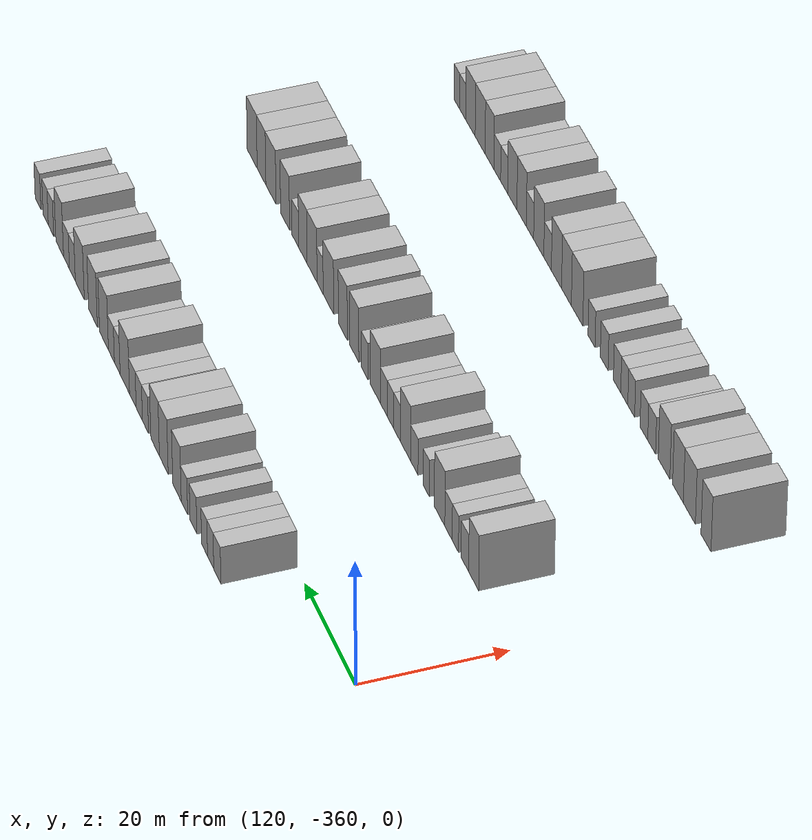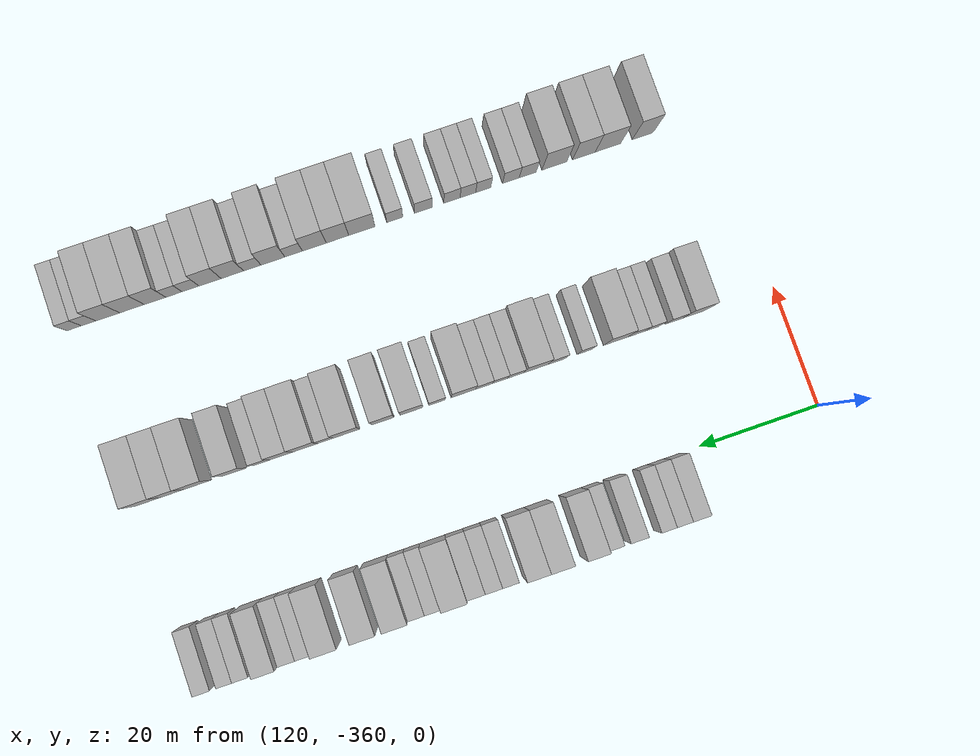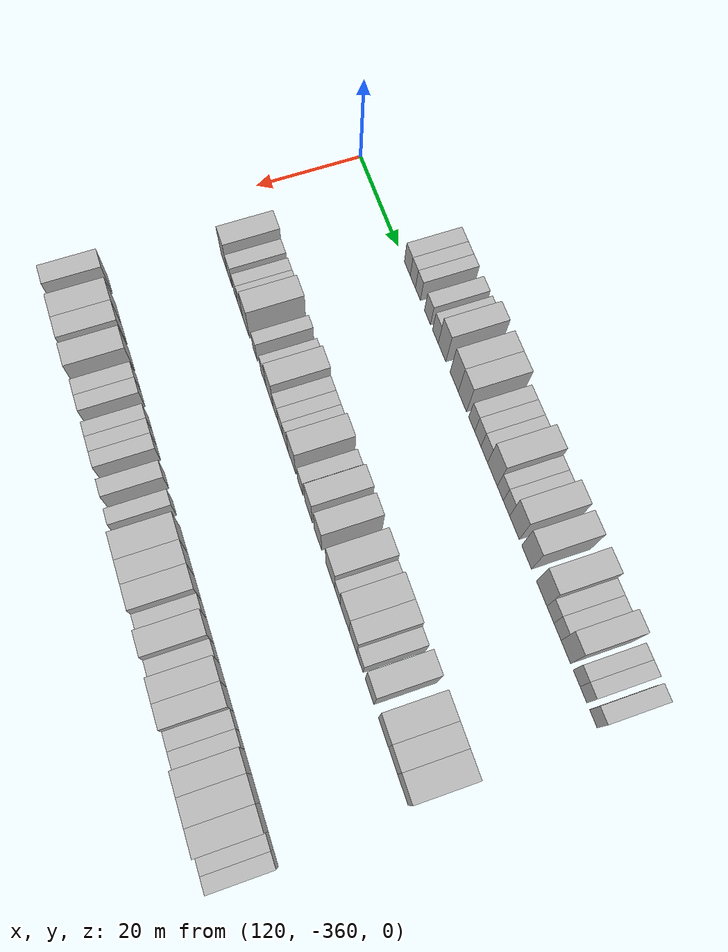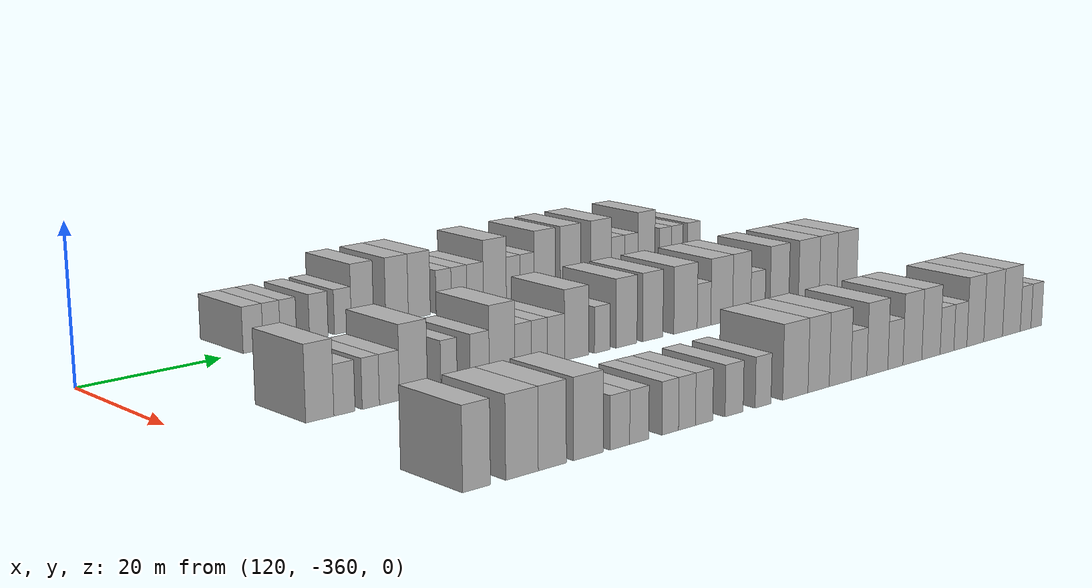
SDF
<sdf version="1.6">
 <world name="default">
  <model name="building_719">
   <static>1</static>
   <pose>115.0000 -335.2625 0 0.000000 0.000000 0.000000</pose>
   <link name="link">
    <pose>0 0 3.00 0 0 0</pose>
    <collision name="collision"><geometry><box><size>10.0000 2.9932 6.0000</size></box></geometry></collision>
    <visual name="visual">
     <cast_shadows>0</cast_shadows>
     <geometry><box><size>10.0000 2.9932 6.0000</size></box></geometry>
     <material>
      <script>
       <uri>model://HANNAS_wall/materials/scripts</uri>
       <uri>model://HANNAS_wall/materials/textures</uri>
       <name>vrc/HANNAS_wall</name>
      </script>
     </material>
    </visual>
   </link>
  </model>
  <model name="building_720">
   <static>1</static>
   <pose>115.0000 -332.4646 0 0.000000 0.000000 0.000000</pose>
   <link name="link">
    <pose>0 0 3.00 0 0 0</pose>
    <collision name="collision"><geometry><box><size>10.0000 2.6026 6.0000</size></box></geometry></collision>
    <visual name="visual">
     <cast_shadows>0</cast_shadows>
     <geometry><box><size>10.0000 2.6026 6.0000</size></box></geometry>
     <material>
      <script>
       <uri>model://HANNAS_wall/materials/scripts</uri>
       <uri>model://HANNAS_wall/materials/textures</uri>
       <name>vrc/HANNAS_wall</name>
      </script>
     </material>
    </visual>
   </link>
  </model>
  <model name="building_721">
   <static>1</static>
   <pose>115.0000 -329.9194 0 0.000000 0.000000 0.000000</pose>
   <link name="link">
    <pose>0 0 3.00 0 0 0</pose>
    <collision name="collision"><geometry><box><size>10.0000 2.4877 6.0000</size></box></geometry></collision>
    <visual name="visual">
     <cast_shadows>0</cast_shadows>
     <geometry><box><size>10.0000 2.4877 6.0000</size></box></geometry>
     <material>
      <script>
       <uri>model://HANNAS_wall/materials/scripts</uri>
       <uri>model://HANNAS_wall/materials/textures</uri>
       <name>vrc/HANNAS_wall</name>
      </script>
     </material>
    </visual>
   </link>
  </model>
  <model name="building_722">
   <static>1</static>
   <pose>115.0000 -325.2117 0 0.000000 0.000000 0.000000</pose>
   <link name="link">
    <pose>0 0 3.00 0 0 0</pose>
    <collision name="collision"><geometry><box><size>10.0000 2.9278 6.0000</size></box></geometry></collision>
    <visual name="visual">
     <cast_shadows>0</cast_shadows>
     <geometry><box><size>10.0000 2.9278 6.0000</size></box></geometry>
     <material>
      <script>
       <uri>model://HANNAS_wall/materials/scripts</uri>
       <uri>model://HANNAS_wall/materials/textures</uri>
       <name>vrc/HANNAS_wall</name>
      </script>
     </material>
    </visual>
   </link>
  </model>
  <model name="building_723">
   <static>1</static>
   <pose>115.0000 -321.3798 0 0.000000 0.000000 0.000000</pose>
   <link name="link">
    <pose>0 0 3.00 0 0 0</pose>
    <collision name="collision"><geometry><box><size>10.0000 2.7359 6.0000</size></box></geometry></collision>
    <visual name="visual">
     <cast_shadows>0</cast_shadows>
     <geometry><box><size>10.0000 2.7359 6.0000</size></box></geometry>
     <material>
      <script>
       <uri>model://HANNAS_wall/materials/scripts</uri>
       <uri>model://HANNAS_wall/materials/textures</uri>
       <name>vrc/HANNAS_wall</name>
      </script>
     </material>
    </visual>
   </link>
  </model>
  <model name="building_724">
   <static>1</static>
   <pose>115.0000 -318.2033 0 0.000000 0.000000 0.000000</pose>
   <link name="link">
    <pose>0 0 4.50 0 0 0</pose>
    <collision name="collision"><geometry><box><size>10.0000 3.6172 9.0000</size></box></geometry></collision>
    <visual name="visual">
     <cast_shadows>0</cast_shadows>
     <geometry><box><size>10.0000 3.6172 9.0000</size></box></geometry>
     <material>
      <script>
       <uri>model://HANNAS_wall/materials/scripts</uri>
       <uri>model://HANNAS_wall/materials/textures</uri>
       <name>vrc/HANNAS_wall</name>
      </script>
     </material>
    </visual>
   </link>
  </model>
  <model name="building_725">
   <static>1</static>
   <pose>115.0000 -312.4974 0 0.000000 0.000000 0.000000</pose>
   <link name="link">
    <pose>0 0 4.50 0 0 0</pose>
    <collision name="collision"><geometry><box><size>10.0000 3.7946 9.0000</size></box></geometry></collision>
    <visual name="visual">
     <cast_shadows>0</cast_shadows>
     <geometry><box><size>10.0000 3.7946 9.0000</size></box></geometry>
     <material>
      <script>
       <uri>model://HANNAS_wall/materials/scripts</uri>
       <uri>model://HANNAS_wall/materials/textures</uri>
       <name>vrc/HANNAS_wall</name>
      </script>
     </material>
    </visual>
   </link>
  </model>
  <model name="building_726">
   <static>1</static>
   <pose>115.0000 -308.7201 0 0.000000 0.000000 0.000000</pose>
   <link name="link">
    <pose>0 0 4.50 0 0 0</pose>
    <collision name="collision"><geometry><box><size>10.0000 3.7598 9.0000</size></box></geometry></collision>
    <visual name="visual">
     <cast_shadows>0</cast_shadows>
     <geometry><box><size>10.0000 3.7598 9.0000</size></box></geometry>
     <material>
      <script>
       <uri>model://HANNAS_wall/materials/scripts</uri>
       <uri>model://HANNAS_wall/materials/textures</uri>
       <name>vrc/HANNAS_wall</name>
      </script>
     </material>
    </visual>
   </link>
  </model>
  <model name="building_727">
   <static>1</static>
   <pose>115.0000 -304.4988 0 0.000000 0.000000 0.000000</pose>
   <link name="link">
    <pose>0 0 3.00 0 0 0</pose>
    <collision name="collision"><geometry><box><size>10.0000 2.6829 6.0000</size></box></geometry></collision>
    <visual name="visual">
     <cast_shadows>0</cast_shadows>
     <geometry><box><size>10.0000 2.6829 6.0000</size></box></geometry>
     <material>
      <script>
       <uri>model://HANNAS_wall/materials/scripts</uri>
       <uri>model://HANNAS_wall/materials/textures</uri>
       <name>vrc/HANNAS_wall</name>
      </script>
     </material>
    </visual>
   </link>
  </model>
  <model name="building_728">
   <static>1</static>
   <pose>115.0000 -301.7711 0 0.000000 0.000000 0.000000</pose>
   <link name="link">
    <pose>0 0 3.00 0 0 0</pose>
    <collision name="collision"><geometry><box><size>10.0000 2.7724 6.0000</size></box></geometry></collision>
    <visual name="visual">
     <cast_shadows>0</cast_shadows>
     <geometry><box><size>10.0000 2.7724 6.0000</size></box></geometry>
     <material>
      <script>
       <uri>model://HANNAS_wall/materials/scripts</uri>
       <uri>model://HANNAS_wall/materials/textures</uri>
       <name>vrc/HANNAS_wall</name>
      </script>
     </material>
    </visual>
   </link>
  </model>
  <model name="building_729">
   <static>1</static>
   <pose>115.0000 -298.9156 0 0.000000 0.000000 0.000000</pose>
   <link name="link">
    <pose>0 0 3.00 0 0 0</pose>
    <collision name="collision"><geometry><box><size>10.0000 2.9385 6.0000</size></box></geometry></collision>
    <visual name="visual">
     <cast_shadows>0</cast_shadows>
     <geometry><box><size>10.0000 2.9385 6.0000</size></box></geometry>
     <material>
      <script>
       <uri>model://HANNAS_wall/materials/scripts</uri>
       <uri>model://HANNAS_wall/materials/textures</uri>
       <name>vrc/HANNAS_wall</name>
      </script>
     </material>
    </visual>
   </link>
  </model>
  <model name="building_730">
   <static>1</static>
   <pose>115.0000 -295.3447 0 0.000000 0.000000 0.000000</pose>
   <link name="link">
    <pose>0 0 4.50 0 0 0</pose>
    <collision name="collision"><geometry><box><size>10.0000 4.2033 9.0000</size></box></geometry></collision>
    <visual name="visual">
     <cast_shadows>0</cast_shadows>
     <geometry><box><size>10.0000 4.2033 9.0000</size></box></geometry>
     <material>
      <script>
       <uri>model://HANNAS_wall/materials/scripts</uri>
       <uri>model://HANNAS_wall/materials/textures</uri>
       <name>vrc/HANNAS_wall</name>
      </script>
     </material>
    </visual>
   </link>
  </model>
  <model name="building_731">
   <static>1</static>
   <pose>115.0000 -291.9706 0 0.000000 0.000000 0.000000</pose>
   <link name="link">
    <pose>0 0 3.00 0 0 0</pose>
    <collision name="collision"><geometry><box><size>10.0000 2.5448 6.0000</size></box></geometry></collision>
    <visual name="visual">
     <cast_shadows>0</cast_shadows>
     <geometry><box><size>10.0000 2.5448 6.0000</size></box></geometry>
     <material>
      <script>
       <uri>model://HANNAS_wall/materials/scripts</uri>
       <uri>model://HANNAS_wall/materials/textures</uri>
       <name>vrc/HANNAS_wall</name>
      </script>
     </material>
    </visual>
   </link>
  </model>
  <model name="building_732">
   <static>1</static>
   <pose>115.0000 -289.3499 0 0.000000 0.000000 0.000000</pose>
   <link name="link">
    <pose>0 0 3.00 0 0 0</pose>
    <collision name="collision"><geometry><box><size>10.0000 2.6968 6.0000</size></box></geometry></collision>
    <visual name="visual">
     <cast_shadows>0</cast_shadows>
     <geometry><box><size>10.0000 2.6968 6.0000</size></box></geometry>
     <material>
      <script>
       <uri>model://HANNAS_wall/materials/scripts</uri>
       <uri>model://HANNAS_wall/materials/textures</uri>
       <name>vrc/HANNAS_wall</name>
      </script>
     </material>
    </visual>
   </link>
  </model>
  <model name="building_733">
   <static>1</static>
   <pose>115.0000 -285.9950 0 0.000000 0.000000 0.000000</pose>
   <link name="link">
    <pose>0 0 4.50 0 0 0</pose>
    <collision name="collision"><geometry><box><size>10.0000 4.0129 9.0000</size></box></geometry></collision>
    <visual name="visual">
     <cast_shadows>0</cast_shadows>
     <geometry><box><size>10.0000 4.0129 9.0000</size></box></geometry>
     <material>
      <script>
       <uri>model://HANNAS_wall/materials/scripts</uri>
       <uri>model://HANNAS_wall/materials/textures</uri>
       <name>vrc/HANNAS_wall</name>
      </script>
     </material>
    </visual>
   </link>
  </model>
  <model name="building_734">
   <static>1</static>
   <pose>115.0000 -280.9953 0 0.000000 0.000000 0.000000</pose>
   <link name="link">
    <pose>0 0 4.50 0 0 0</pose>
    <collision name="collision"><geometry><box><size>10.0000 3.9864 9.0000</size></box></geometry></collision>
    <visual name="visual">
     <cast_shadows>0</cast_shadows>
     <geometry><box><size>10.0000 3.9864 9.0000</size></box></geometry>
     <material>
      <script>
       <uri>model://HANNAS_wall/materials/scripts</uri>
       <uri>model://HANNAS_wall/materials/textures</uri>
       <name>vrc/HANNAS_wall</name>
      </script>
     </material>
    </visual>
   </link>
  </model>
  <model name="building_735">
   <static>1</static>
   <pose>115.0000 -274.9266 0 0.000000 0.000000 0.000000</pose>
   <link name="link">
    <pose>0 0 4.50 0 0 0</pose>
    <collision name="collision"><geometry><box><size>10.0000 4.1511 9.0000</size></box></geometry></collision>
    <visual name="visual">
     <cast_shadows>0</cast_shadows>
     <geometry><box><size>10.0000 4.1511 9.0000</size></box></geometry>
     <material>
      <script>
       <uri>model://HANNAS_wall/materials/scripts</uri>
       <uri>model://HANNAS_wall/materials/textures</uri>
       <name>vrc/HANNAS_wall</name>
      </script>
     </material>
    </visual>
   </link>
  </model>
  <model name="building_736">
   <static>1</static>
   <pose>115.0000 -271.4893 0 0.000000 0.000000 0.000000</pose>
   <link name="link">
    <pose>0 0 3.00 0 0 0</pose>
    <collision name="collision"><geometry><box><size>10.0000 2.7236 6.0000</size></box></geometry></collision>
    <visual name="visual">
     <cast_shadows>0</cast_shadows>
     <geometry><box><size>10.0000 2.7236 6.0000</size></box></geometry>
     <material>
      <script>
       <uri>model://HANNAS_wall/materials/scripts</uri>
       <uri>model://HANNAS_wall/materials/textures</uri>
       <name>vrc/HANNAS_wall</name>
      </script>
     </material>
    </visual>
   </link>
  </model>
  <model name="building_737">
   <static>1</static>
   <pose>115.0000 -268.7537 0 0.000000 0.000000 0.000000</pose>
   <link name="link">
    <pose>0 0 3.00 0 0 0</pose>
    <collision name="collision"><geometry><box><size>10.0000 2.7477 6.0000</size></box></geometry></collision>
    <visual name="visual">
     <cast_shadows>0</cast_shadows>
     <geometry><box><size>10.0000 2.7477 6.0000</size></box></geometry>
     <material>
      <script>
       <uri>model://HANNAS_wall/materials/scripts</uri>
       <uri>model://HANNAS_wall/materials/textures</uri>
       <name>vrc/HANNAS_wall</name>
      </script>
     </material>
    </visual>
   </link>
  </model>
  <model name="building_738">
   <static>1</static>
   <pose>115.0000 -265.5766 0 0.000000 0.000000 0.000000</pose>
   <link name="link">
    <pose>0 0 4.50 0 0 0</pose>
    <collision name="collision"><geometry><box><size>10.0000 3.6065 9.0000</size></box></geometry></collision>
    <visual name="visual">
     <cast_shadows>0</cast_shadows>
     <geometry><box><size>10.0000 3.6065 9.0000</size></box></geometry>
     <material>
      <script>
       <uri>model://HANNAS_wall/materials/scripts</uri>
       <uri>model://HANNAS_wall/materials/textures</uri>
       <name>vrc/HANNAS_wall</name>
      </script>
     </material>
    </visual>
   </link>
  </model>
  <model name="building_739">
   <static>1</static>
   <pose>115.0000 -261.5006 0 0.000000 0.000000 0.000000</pose>
   <link name="link">
    <pose>0 0 3.00 0 0 0</pose>
    <collision name="collision"><geometry><box><size>10.0000 2.5455 6.0000</size></box></geometry></collision>
    <visual name="visual">
     <cast_shadows>0</cast_shadows>
     <geometry><box><size>10.0000 2.5455 6.0000</size></box></geometry>
     <material>
      <script>
       <uri>model://HANNAS_wall/materials/scripts</uri>
       <uri>model://HANNAS_wall/materials/textures</uri>
       <name>vrc/HANNAS_wall</name>
      </script>
     </material>
    </visual>
   </link>
  </model>
  <model name="building_740">
   <static>1</static>
   <pose>115.0000 -258.9813 0 0.000000 0.000000 0.000000</pose>
   <link name="link">
    <pose>0 0 3.00 0 0 0</pose>
    <collision name="collision"><geometry><box><size>10.0000 2.4929 6.0000</size></box></geometry></collision>
    <visual name="visual">
     <cast_shadows>0</cast_shadows>
     <geometry><box><size>10.0000 2.4929 6.0000</size></box></geometry>
     <material>
      <script>
       <uri>model://HANNAS_wall/materials/scripts</uri>
       <uri>model://HANNAS_wall/materials/textures</uri>
       <name>vrc/HANNAS_wall</name>
      </script>
     </material>
    </visual>
   </link>
  </model>
  <model name="building_741">
   <static>1</static>
   <pose>115.0000 -255.3675 0 0.000000 0.000000 0.000000</pose>
   <link name="link">
    <pose>0 0 3.00 0 0 0</pose>
    <collision name="collision"><geometry><box><size>10.0000 2.7347 6.0000</size></box></geometry></collision>
    <visual name="visual">
     <cast_shadows>0</cast_shadows>
     <geometry><box><size>10.0000 2.7347 6.0000</size></box></geometry>
     <material>
      <script>
       <uri>model://HANNAS_wall/materials/scripts</uri>
       <uri>model://HANNAS_wall/materials/textures</uri>
       <name>vrc/HANNAS_wall</name>
      </script>
     </material>
    </visual>
   </link>
  </model>
  <model name="building_950">
   <static>1</static>
   <pose>145.0000 -346.2572 0 0.000000 0.000000 0.000000</pose>
   <link name="link">
    <pose>0 0 4.50 0 0 0</pose>
    <collision name="collision"><geometry><box><size>10.0000 3.8100 9.0000</size></box></geometry></collision>
    <visual name="visual">
     <cast_shadows>0</cast_shadows>
     <geometry><box><size>10.0000 3.8100 9.0000</size></box></geometry>
     <material>
      <script>
       <uri>model://HANNAS_wall/materials/scripts</uri>
       <uri>model://HANNAS_wall/materials/textures</uri>
       <name>vrc/HANNAS_wall</name>
      </script>
     </material>
    </visual>
   </link>
  </model>
  <model name="building_951">
   <static>1</static>
   <pose>145.0000 -342.8979 0 0.000000 0.000000 0.000000</pose>
   <link name="link">
    <pose>0 0 3.00 0 0 0</pose>
    <collision name="collision"><geometry><box><size>10.0000 2.9087 6.0000</size></box></geometry></collision>
    <visual name="visual">
     <cast_shadows>0</cast_shadows>
     <geometry><box><size>10.0000 2.9087 6.0000</size></box></geometry>
     <material>
      <script>
       <uri>model://HANNAS_wall/materials/scripts</uri>
       <uri>model://HANNAS_wall/materials/textures</uri>
       <name>vrc/HANNAS_wall</name>
      </script>
     </material>
    </visual>
   </link>
  </model>
  <model name="building_952">
   <static>1</static>
   <pose>145.0000 -339.2304 0 0.000000 0.000000 0.000000</pose>
   <link name="link">
    <pose>0 0 3.00 0 0 0</pose>
    <collision name="collision"><geometry><box><size>10.0000 2.4262 6.0000</size></box></geometry></collision>
    <visual name="visual">
     <cast_shadows>0</cast_shadows>
     <geometry><box><size>10.0000 2.4262 6.0000</size></box></geometry>
     <material>
      <script>
       <uri>model://HANNAS_wall/materials/scripts</uri>
       <uri>model://HANNAS_wall/materials/textures</uri>
       <name>vrc/HANNAS_wall</name>
      </script>
     </material>
    </visual>
   </link>
  </model>
  <model name="building_953">
   <static>1</static>
   <pose>145.0000 -336.5761 0 0.000000 0.000000 0.000000</pose>
   <link name="link">
    <pose>0 0 3.00 0 0 0</pose>
    <collision name="collision"><geometry><box><size>10.0000 2.8824 6.0000</size></box></geometry></collision>
    <visual name="visual">
     <cast_shadows>0</cast_shadows>
     <geometry><box><size>10.0000 2.8824 6.0000</size></box></geometry>
     <material>
      <script>
       <uri>model://HANNAS_wall/materials/scripts</uri>
       <uri>model://HANNAS_wall/materials/textures</uri>
       <name>vrc/HANNAS_wall</name>
      </script>
     </material>
    </visual>
   </link>
  </model>
  <model name="building_954">
   <static>1</static>
   <pose>145.0000 -333.0907 0 0.000000 0.000000 0.000000</pose>
   <link name="link">
    <pose>0 0 4.50 0 0 0</pose>
    <collision name="collision"><geometry><box><size>10.0000 4.0884 9.0000</size></box></geometry></collision>
    <visual name="visual">
     <cast_shadows>0</cast_shadows>
     <geometry><box><size>10.0000 4.0884 9.0000</size></box></geometry>
     <material>
      <script>
       <uri>model://HANNAS_wall/materials/scripts</uri>
       <uri>model://HANNAS_wall/materials/textures</uri>
       <name>vrc/HANNAS_wall</name>
      </script>
     </material>
    </visual>
   </link>
  </model>
  <model name="building_955">
   <static>1</static>
   <pose>145.0000 -327.8206 0 0.000000 0.000000 0.000000</pose>
   <link name="link">
    <pose>0 0 3.00 0 0 0</pose>
    <collision name="collision"><geometry><box><size>10.0000 2.4519 6.0000</size></box></geometry></collision>
    <visual name="visual">
     <cast_shadows>0</cast_shadows>
     <geometry><box><size>10.0000 2.4519 6.0000</size></box></geometry>
     <material>
      <script>
       <uri>model://HANNAS_wall/materials/scripts</uri>
       <uri>model://HANNAS_wall/materials/textures</uri>
       <name>vrc/HANNAS_wall</name>
      </script>
     </material>
    </visual>
   </link>
  </model>
  <model name="building_956">
   <static>1</static>
   <pose>145.0000 -323.1176 0 0.000000 0.000000 0.000000</pose>
   <link name="link">
    <pose>0 0 3.00 0 0 0</pose>
    <collision name="collision"><geometry><box><size>10.0000 2.9541 6.0000</size></box></geometry></collision>
    <visual name="visual">
     <cast_shadows>0</cast_shadows>
     <geometry><box><size>10.0000 2.9541 6.0000</size></box></geometry>
     <material>
      <script>
       <uri>model://HANNAS_wall/materials/scripts</uri>
       <uri>model://HANNAS_wall/materials/textures</uri>
       <name>vrc/HANNAS_wall</name>
      </script>
     </material>
    </visual>
   </link>
  </model>
  <model name="building_957">
   <static>1</static>
   <pose>145.0000 -319.6156 0 0.000000 0.000000 0.000000</pose>
   <link name="link">
    <pose>0 0 4.50 0 0 0</pose>
    <collision name="collision"><geometry><box><size>10.0000 4.0499 9.0000</size></box></geometry></collision>
    <visual name="visual">
     <cast_shadows>0</cast_shadows>
     <geometry><box><size>10.0000 4.0499 9.0000</size></box></geometry>
     <material>
      <script>
       <uri>model://HANNAS_wall/materials/scripts</uri>
       <uri>model://HANNAS_wall/materials/textures</uri>
       <name>vrc/HANNAS_wall</name>
      </script>
     </material>
    </visual>
   </link>
  </model>
  <model name="building_958">
   <static>1</static>
   <pose>145.0000 -316.2407 0 0.000000 0.000000 0.000000</pose>
   <link name="link">
    <pose>0 0 3.00 0 0 0</pose>
    <collision name="collision"><geometry><box><size>10.0000 2.6998 6.0000</size></box></geometry></collision>
    <visual name="visual">
     <cast_shadows>0</cast_shadows>
     <geometry><box><size>10.0000 2.6998 6.0000</size></box></geometry>
     <material>
      <script>
       <uri>model://HANNAS_wall/materials/scripts</uri>
       <uri>model://HANNAS_wall/materials/textures</uri>
       <name>vrc/HANNAS_wall</name>
      </script>
     </material>
    </visual>
   </link>
  </model>
  <model name="building_959">
   <static>1</static>
   <pose>145.0000 -313.6062 0 0.000000 0.000000 0.000000</pose>
   <link name="link">
    <pose>0 0 3.00 0 0 0</pose>
    <collision name="collision"><geometry><box><size>10.0000 2.5693 6.0000</size></box></geometry></collision>
    <visual name="visual">
     <cast_shadows>0</cast_shadows>
     <geometry><box><size>10.0000 2.5693 6.0000</size></box></geometry>
     <material>
      <script>
       <uri>model://HANNAS_wall/materials/scripts</uri>
       <uri>model://HANNAS_wall/materials/textures</uri>
       <name>vrc/HANNAS_wall</name>
      </script>
     </material>
    </visual>
   </link>
  </model>
  <model name="building_960">
   <static>1</static>
   <pose>145.0000 -310.8994 0 0.000000 0.000000 0.000000</pose>
   <link name="link">
    <pose>0 0 3.00 0 0 0</pose>
    <collision name="collision"><geometry><box><size>10.0000 2.8443 6.0000</size></box></geometry></collision>
    <visual name="visual">
     <cast_shadows>0</cast_shadows>
     <geometry><box><size>10.0000 2.8443 6.0000</size></box></geometry>
     <material>
      <script>
       <uri>model://HANNAS_wall/materials/scripts</uri>
       <uri>model://HANNAS_wall/materials/textures</uri>
       <name>vrc/HANNAS_wall</name>
      </script>
     </material>
    </visual>
   </link>
  </model>
  <model name="building_961">
   <static>1</static>
   <pose>145.0000 -307.4395 0 0.000000 0.000000 0.000000</pose>
   <link name="link">
    <pose>0 0 4.50 0 0 0</pose>
    <collision name="collision"><geometry><box><size>10.0000 4.0754 9.0000</size></box></geometry></collision>
    <visual name="visual">
     <cast_shadows>0</cast_shadows>
     <geometry><box><size>10.0000 4.0754 9.0000</size></box></geometry>
     <material>
      <script>
       <uri>model://HANNAS_wall/materials/scripts</uri>
       <uri>model://HANNAS_wall/materials/textures</uri>
       <name>vrc/HANNAS_wall</name>
      </script>
     </material>
    </visual>
   </link>
  </model>
  <model name="building_962">
   <static>1</static>
   <pose>145.0000 -303.0386 0 0.000000 0.000000 0.000000</pose>
   <link name="link">
    <pose>0 0 3.00 0 0 0</pose>
    <collision name="collision"><geometry><box><size>10.0000 2.7265 6.0000</size></box></geometry></collision>
    <visual name="visual">
     <cast_shadows>0</cast_shadows>
     <geometry><box><size>10.0000 2.7265 6.0000</size></box></geometry>
     <material>
      <script>
       <uri>model://HANNAS_wall/materials/scripts</uri>
       <uri>model://HANNAS_wall/materials/textures</uri>
       <name>vrc/HANNAS_wall</name>
      </script>
     </material>
    </visual>
   </link>
  </model>
  <model name="building_963">
   <static>1</static>
   <pose>145.0000 -298.7910 0 0.000000 0.000000 0.000000</pose>
   <link name="link">
    <pose>0 0 4.50 0 0 0</pose>
    <collision name="collision"><geometry><box><size>10.0000 3.7685 9.0000</size></box></geometry></collision>
    <visual name="visual">
     <cast_shadows>0</cast_shadows>
     <geometry><box><size>10.0000 3.7685 9.0000</size></box></geometry>
     <material>
      <script>
       <uri>model://HANNAS_wall/materials/scripts</uri>
       <uri>model://HANNAS_wall/materials/textures</uri>
       <name>vrc/HANNAS_wall</name>
      </script>
     </material>
    </visual>
   </link>
  </model>
  <model name="building_964">
   <static>1</static>
   <pose>145.0000 -294.0535 0 0.000000 0.000000 0.000000</pose>
   <link name="link">
    <pose>0 0 4.50 0 0 0</pose>
    <collision name="collision"><geometry><box><size>10.0000 3.7065 9.0000</size></box></geometry></collision>
    <visual name="visual">
     <cast_shadows>0</cast_shadows>
     <geometry><box><size>10.0000 3.7065 9.0000</size></box></geometry>
     <material>
      <script>
       <uri>model://HANNAS_wall/materials/scripts</uri>
       <uri>model://HANNAS_wall/materials/textures</uri>
       <name>vrc/HANNAS_wall</name>
      </script>
     </material>
    </visual>
   </link>
  </model>
  <model name="building_965">
   <static>1</static>
   <pose>145.0000 -287.9931 0 0.000000 0.000000 0.000000</pose>
   <link name="link">
    <pose>0 0 4.50 0 0 0</pose>
    <collision name="collision"><geometry><box><size>10.0000 4.4144 9.0000</size></box></geometry></collision>
    <visual name="visual">
     <cast_shadows>0</cast_shadows>
     <geometry><box><size>10.0000 4.4144 9.0000</size></box></geometry>
     <material>
      <script>
       <uri>model://HANNAS_wall/materials/scripts</uri>
       <uri>model://HANNAS_wall/materials/textures</uri>
       <name>vrc/HANNAS_wall</name>
      </script>
     </material>
    </visual>
   </link>
  </model>
  <model name="building_966">
   <static>1</static>
   <pose>145.0000 -284.4883 0 0.000000 0.000000 0.000000</pose>
   <link name="link">
    <pose>0 0 3.00 0 0 0</pose>
    <collision name="collision"><geometry><box><size>10.0000 2.5952 6.0000</size></box></geometry></collision>
    <visual name="visual">
     <cast_shadows>0</cast_shadows>
     <geometry><box><size>10.0000 2.5952 6.0000</size></box></geometry>
     <material>
      <script>
       <uri>model://HANNAS_wall/materials/scripts</uri>
       <uri>model://HANNAS_wall/materials/textures</uri>
       <name>vrc/HANNAS_wall</name>
      </script>
     </material>
    </visual>
   </link>
  </model>
  <model name="building_967">
   <static>1</static>
   <pose>145.0000 -281.0658 0 0.000000 0.000000 0.000000</pose>
   <link name="link">
    <pose>0 0 4.50 0 0 0</pose>
    <collision name="collision"><geometry><box><size>10.0000 4.2498 9.0000</size></box></geometry></collision>
    <visual name="visual">
     <cast_shadows>0</cast_shadows>
     <geometry><box><size>10.0000 4.2498 9.0000</size></box></geometry>
     <material>
      <script>
       <uri>model://HANNAS_wall/materials/scripts</uri>
       <uri>model://HANNAS_wall/materials/textures</uri>
       <name>vrc/HANNAS_wall</name>
      </script>
     </material>
    </visual>
   </link>
  </model>
  <model name="building_968">
   <static>1</static>
   <pose>145.0000 -277.1388 0 0.000000 0.000000 0.000000</pose>
   <link name="link">
    <pose>0 0 4.50 0 0 0</pose>
    <collision name="collision"><geometry><box><size>10.0000 3.6041 9.0000</size></box></geometry></collision>
    <visual name="visual">
     <cast_shadows>0</cast_shadows>
     <geometry><box><size>10.0000 3.6041 9.0000</size></box></geometry>
     <material>
      <script>
       <uri>model://HANNAS_wall/materials/scripts</uri>
       <uri>model://HANNAS_wall/materials/textures</uri>
       <name>vrc/HANNAS_wall</name>
      </script>
     </material>
    </visual>
   </link>
  </model>
  <model name="building_969">
   <static>1</static>
   <pose>145.0000 -273.8851 0 0.000000 0.000000 0.000000</pose>
   <link name="link">
    <pose>0 0 3.00 0 0 0</pose>
    <collision name="collision"><geometry><box><size>10.0000 2.9033 6.0000</size></box></geometry></collision>
    <visual name="visual">
     <cast_shadows>0</cast_shadows>
     <geometry><box><size>10.0000 2.9033 6.0000</size></box></geometry>
     <material>
      <script>
       <uri>model://HANNAS_wall/materials/scripts</uri>
       <uri>model://HANNAS_wall/materials/textures</uri>
       <name>vrc/HANNAS_wall</name>
      </script>
     </material>
    </visual>
   </link>
  </model>
  <model name="building_970">
   <static>1</static>
   <pose>145.0000 -269.4820 0 0.000000 0.000000 0.000000</pose>
   <link name="link">
    <pose>0 0 4.50 0 0 0</pose>
    <collision name="collision"><geometry><box><size>10.0000 3.9031 9.0000</size></box></geometry></collision>
    <visual name="visual">
     <cast_shadows>0</cast_shadows>
     <geometry><box><size>10.0000 3.9031 9.0000</size></box></geometry>
     <material>
      <script>
       <uri>model://HANNAS_wall/materials/scripts</uri>
       <uri>model://HANNAS_wall/materials/textures</uri>
       <name>vrc/HANNAS_wall</name>
      </script>
     </material>
    </visual>
   </link>
  </model>
  <model name="building_971">
   <static>1</static>
   <pose>145.0000 -263.3070 0 0.000000 0.000000 0.000000</pose>
   <link name="link">
    <pose>0 0 4.50 0 0 0</pose>
    <collision name="collision"><geometry><box><size>10.0000 4.4469 9.0000</size></box></geometry></collision>
    <visual name="visual">
     <cast_shadows>0</cast_shadows>
     <geometry><box><size>10.0000 4.4469 9.0000</size></box></geometry>
     <material>
      <script>
       <uri>model://HANNAS_wall/materials/scripts</uri>
       <uri>model://HANNAS_wall/materials/textures</uri>
       <name>vrc/HANNAS_wall</name>
      </script>
     </material>
    </visual>
   </link>
  </model>
  <model name="building_972">
   <static>1</static>
   <pose>145.0000 -259.1619 0 0.000000 0.000000 0.000000</pose>
   <link name="link">
    <pose>0 0 4.50 0 0 0</pose>
    <collision name="collision"><geometry><box><size>10.0000 3.8434 9.0000</size></box></geometry></collision>
    <visual name="visual">
     <cast_shadows>0</cast_shadows>
     <geometry><box><size>10.0000 3.8434 9.0000</size></box></geometry>
     <material>
      <script>
       <uri>model://HANNAS_wall/materials/scripts</uri>
       <uri>model://HANNAS_wall/materials/textures</uri>
       <name>vrc/HANNAS_wall</name>
      </script>
     </material>
    </visual>
   </link>
  </model>
  <model name="building_973">
   <static>1</static>
   <pose>145.0000 -255.0345 0 0.000000 0.000000 0.000000</pose>
   <link name="link">
    <pose>0 0 4.50 0 0 0</pose>
    <collision name="collision"><geometry><box><size>10.0000 4.4115 9.0000</size></box></geometry></collision>
    <visual name="visual">
     <cast_shadows>0</cast_shadows>
     <geometry><box><size>10.0000 4.4115 9.0000</size></box></geometry>
     <material>
      <script>
       <uri>model://HANNAS_wall/materials/scripts</uri>
       <uri>model://HANNAS_wall/materials/textures</uri>
       <name>vrc/HANNAS_wall</name>
      </script>
     </material>
    </visual>
   </link>
  </model>
  <model name="building_1181">
   <static>1</static>
   <pose>175.0000 -348.5690 0 0.000000 0.000000 0.000000</pose>
   <link name="link">
    <pose>0 0 4.50 0 0 0</pose>
    <collision name="collision"><geometry><box><size>10.0000 3.6012 9.0000</size></box></geometry></collision>
    <visual name="visual">
     <cast_shadows>0</cast_shadows>
     <geometry><box><size>10.0000 3.6012 9.0000</size></box></geometry>
     <material>
      <script>
       <uri>model://HANNAS_wall/materials/scripts</uri>
       <uri>model://HANNAS_wall/materials/textures</uri>
       <name>vrc/HANNAS_wall</name>
      </script>
     </material>
    </visual>
   </link>
  </model>
  <model name="building_1182">
   <static>1</static>
   <pose>175.0000 -342.5790 0 0.000000 0.000000 0.000000</pose>
   <link name="link">
    <pose>0 0 4.50 0 0 0</pose>
    <collision name="collision"><geometry><box><size>10.0000 4.3789 9.0000</size></box></geometry></collision>
    <visual name="visual">
     <cast_shadows>0</cast_shadows>
     <geometry><box><size>10.0000 4.3789 9.0000</size></box></geometry>
     <material>
      <script>
       <uri>model://HANNAS_wall/materials/scripts</uri>
       <uri>model://HANNAS_wall/materials/textures</uri>
       <name>vrc/HANNAS_wall</name>
      </script>
     </material>
    </visual>
   </link>
  </model>
  <model name="building_1183">
   <static>1</static>
   <pose>175.0000 -338.4486 0 0.000000 0.000000 0.000000</pose>
   <link name="link">
    <pose>0 0 4.50 0 0 0</pose>
    <collision name="collision"><geometry><box><size>10.0000 3.8818 9.0000</size></box></geometry></collision>
    <visual name="visual">
     <cast_shadows>0</cast_shadows>
     <geometry><box><size>10.0000 3.8818 9.0000</size></box></geometry>
     <material>
      <script>
       <uri>model://HANNAS_wall/materials/scripts</uri>
       <uri>model://HANNAS_wall/materials/textures</uri>
       <name>vrc/HANNAS_wall</name>
      </script>
     </material>
    </visual>
   </link>
  </model>
  <model name="building_1184">
   <static>1</static>
   <pose>175.0000 -333.3842 0 0.000000 0.000000 0.000000</pose>
   <link name="link">
    <pose>0 0 4.50 0 0 0</pose>
    <collision name="collision"><geometry><box><size>10.0000 4.2470 9.0000</size></box></geometry></collision>
    <visual name="visual">
     <cast_shadows>0</cast_shadows>
     <geometry><box><size>10.0000 4.2470 9.0000</size></box></geometry>
     <material>
      <script>
       <uri>model://HANNAS_wall/materials/scripts</uri>
       <uri>model://HANNAS_wall/materials/textures</uri>
       <name>vrc/HANNAS_wall</name>
      </script>
     </material>
    </visual>
   </link>
  </model>
  <model name="building_1185">
   <static>1</static>
   <pose>175.0000 -328.8185 0 0.000000 0.000000 0.000000</pose>
   <link name="link">
    <pose>0 0 3.00 0 0 0</pose>
    <collision name="collision"><geometry><box><size>10.0000 2.8844 6.0000</size></box></geometry></collision>
    <visual name="visual">
     <cast_shadows>0</cast_shadows>
     <geometry><box><size>10.0000 2.8844 6.0000</size></box></geometry>
     <material>
      <script>
       <uri>model://HANNAS_wall/materials/scripts</uri>
       <uri>model://HANNAS_wall/materials/textures</uri>
       <name>vrc/HANNAS_wall</name>
      </script>
     </material>
    </visual>
   </link>
  </model>
  <model name="building_1186">
   <static>1</static>
   <pose>175.0000 -325.9426 0 0.000000 0.000000 0.000000</pose>
   <link name="link">
    <pose>0 0 3.00 0 0 0</pose>
    <collision name="collision"><geometry><box><size>10.0000 2.8673 6.0000</size></box></geometry></collision>
    <visual name="visual">
     <cast_shadows>0</cast_shadows>
     <geometry><box><size>10.0000 2.8673 6.0000</size></box></geometry>
     <material>
      <script>
       <uri>model://HANNAS_wall/materials/scripts</uri>
       <uri>model://HANNAS_wall/materials/textures</uri>
       <name>vrc/HANNAS_wall</name>
      </script>
     </material>
    </visual>
   </link>
  </model>
  <model name="building_1187">
   <static>1</static>
   <pose>175.0000 -321.2251 0 0.000000 0.000000 0.000000</pose>
   <link name="link">
    <pose>0 0 3.00 0 0 0</pose>
    <collision name="collision"><geometry><box><size>10.0000 2.5678 6.0000</size></box></geometry></collision>
    <visual name="visual">
     <cast_shadows>0</cast_shadows>
     <geometry><box><size>10.0000 2.5678 6.0000</size></box></geometry>
     <material>
      <script>
       <uri>model://HANNAS_wall/materials/scripts</uri>
       <uri>model://HANNAS_wall/materials/textures</uri>
       <name>vrc/HANNAS_wall</name>
      </script>
     </material>
    </visual>
   </link>
  </model>
  <model name="building_1188">
   <static>1</static>
   <pose>175.0000 -318.6141 0 0.000000 0.000000 0.000000</pose>
   <link name="link">
    <pose>0 0 3.00 0 0 0</pose>
    <collision name="collision"><geometry><box><size>10.0000 2.6541 6.0000</size></box></geometry></collision>
    <visual name="visual">
     <cast_shadows>0</cast_shadows>
     <geometry><box><size>10.0000 2.6541 6.0000</size></box></geometry>
     <material>
      <script>
       <uri>model://HANNAS_wall/materials/scripts</uri>
       <uri>model://HANNAS_wall/materials/textures</uri>
       <name>vrc/HANNAS_wall</name>
      </script>
     </material>
    </visual>
   </link>
  </model>
  <model name="building_1189">
   <static>1</static>
   <pose>175.0000 -315.8997 0 0.000000 0.000000 0.000000</pose>
   <link name="link">
    <pose>0 0 3.00 0 0 0</pose>
    <collision name="collision"><geometry><box><size>10.0000 2.7747 6.0000</size></box></geometry></collision>
    <visual name="visual">
     <cast_shadows>0</cast_shadows>
     <geometry><box><size>10.0000 2.7747 6.0000</size></box></geometry>
     <material>
      <script>
       <uri>model://HANNAS_wall/materials/scripts</uri>
       <uri>model://HANNAS_wall/materials/textures</uri>
       <name>vrc/HANNAS_wall</name>
      </script>
     </material>
    </visual>
   </link>
  </model>
  <model name="building_1190">
   <static>1</static>
   <pose>175.0000 -311.0231 0 0.000000 0.000000 0.000000</pose>
   <link name="link">
    <pose>0 0 3.00 0 0 0</pose>
    <collision name="collision"><geometry><box><size>10.0000 2.9785 6.0000</size></box></geometry></collision>
    <visual name="visual">
     <cast_shadows>0</cast_shadows>
     <geometry><box><size>10.0000 2.9785 6.0000</size></box></geometry>
     <material>
      <script>
       <uri>model://HANNAS_wall/materials/scripts</uri>
       <uri>model://HANNAS_wall/materials/textures</uri>
       <name>vrc/HANNAS_wall</name>
      </script>
     </material>
    </visual>
   </link>
  </model>
  <model name="building_1191">
   <static>1</static>
   <pose>175.0000 -306.1841 0 0.000000 0.000000 0.000000</pose>
   <link name="link">
    <pose>0 0 3.00 0 0 0</pose>
    <collision name="collision"><geometry><box><size>10.0000 2.6994 6.0000</size></box></geometry></collision>
    <visual name="visual">
     <cast_shadows>0</cast_shadows>
     <geometry><box><size>10.0000 2.6994 6.0000</size></box></geometry>
     <material>
      <script>
       <uri>model://HANNAS_wall/materials/scripts</uri>
       <uri>model://HANNAS_wall/materials/textures</uri>
       <name>vrc/HANNAS_wall</name>
      </script>
     </material>
    </visual>
   </link>
  </model>
  <model name="building_1192">
   <static>1</static>
   <pose>175.0000 -300.6095 0 0.000000 0.000000 0.000000</pose>
   <link name="link">
    <pose>0 0 4.50 0 0 0</pose>
    <collision name="collision"><geometry><box><size>10.0000 4.4498 9.0000</size></box></geometry></collision>
    <visual name="visual">
     <cast_shadows>0</cast_shadows>
     <geometry><box><size>10.0000 4.4498 9.0000</size></box></geometry>
     <material>
      <script>
       <uri>model://HANNAS_wall/materials/scripts</uri>
       <uri>model://HANNAS_wall/materials/textures</uri>
       <name>vrc/HANNAS_wall</name>
      </script>
     </material>
    </visual>
   </link>
  </model>
  <model name="building_1193">
   <static>1</static>
   <pose>175.0000 -296.4774 0 0.000000 0.000000 0.000000</pose>
   <link name="link">
    <pose>0 0 4.50 0 0 0</pose>
    <collision name="collision"><geometry><box><size>10.0000 3.8144 9.0000</size></box></geometry></collision>
    <visual name="visual">
     <cast_shadows>0</cast_shadows>
     <geometry><box><size>10.0000 3.8144 9.0000</size></box></geometry>
     <material>
      <script>
       <uri>model://HANNAS_wall/materials/scripts</uri>
       <uri>model://HANNAS_wall/materials/textures</uri>
       <name>vrc/HANNAS_wall</name>
      </script>
     </material>
    </visual>
   </link>
  </model>
  <model name="building_1194">
   <static>1</static>
   <pose>175.0000 -292.5669 0 0.000000 0.000000 0.000000</pose>
   <link name="link">
    <pose>0 0 4.50 0 0 0</pose>
    <collision name="collision"><geometry><box><size>10.0000 4.0066 9.0000</size></box></geometry></collision>
    <visual name="visual">
     <cast_shadows>0</cast_shadows>
     <geometry><box><size>10.0000 4.0066 9.0000</size></box></geometry>
     <material>
      <script>
       <uri>model://HANNAS_wall/materials/scripts</uri>
       <uri>model://HANNAS_wall/materials/textures</uri>
       <name>vrc/HANNAS_wall</name>
      </script>
     </material>
    </visual>
   </link>
  </model>
  <model name="building_1195">
   <static>1</static>
   <pose>175.0000 -289.0757 0 0.000000 0.000000 0.000000</pose>
   <link name="link">
    <pose>0 0 3.00 0 0 0</pose>
    <collision name="collision"><geometry><box><size>10.0000 2.9757 6.0000</size></box></geometry></collision>
    <visual name="visual">
     <cast_shadows>0</cast_shadows>
     <geometry><box><size>10.0000 2.9757 6.0000</size></box></geometry>
     <material>
      <script>
       <uri>model://HANNAS_wall/materials/scripts</uri>
       <uri>model://HANNAS_wall/materials/textures</uri>
       <name>vrc/HANNAS_wall</name>
      </script>
     </material>
    </visual>
   </link>
  </model>
  <model name="building_1196">
   <static>1</static>
   <pose>175.0000 -285.5740 0 0.000000 0.000000 0.000000</pose>
   <link name="link">
    <pose>0 0 4.50 0 0 0</pose>
    <collision name="collision"><geometry><box><size>10.0000 4.0276 9.0000</size></box></geometry></collision>
    <visual name="visual">
     <cast_shadows>0</cast_shadows>
     <geometry><box><size>10.0000 4.0276 9.0000</size></box></geometry>
     <material>
      <script>
       <uri>model://HANNAS_wall/materials/scripts</uri>
       <uri>model://HANNAS_wall/materials/textures</uri>
       <name>vrc/HANNAS_wall</name>
      </script>
     </material>
    </visual>
   </link>
  </model>
  <model name="building_1197">
   <static>1</static>
   <pose>175.0000 -282.0853 0 0.000000 0.000000 0.000000</pose>
   <link name="link">
    <pose>0 0 3.00 0 0 0</pose>
    <collision name="collision"><geometry><box><size>10.0000 2.9498 6.0000</size></box></geometry></collision>
    <visual name="visual">
     <cast_shadows>0</cast_shadows>
     <geometry><box><size>10.0000 2.9498 6.0000</size></box></geometry>
     <material>
      <script>
       <uri>model://HANNAS_wall/materials/scripts</uri>
       <uri>model://HANNAS_wall/materials/textures</uri>
       <name>vrc/HANNAS_wall</name>
      </script>
     </material>
    </visual>
   </link>
  </model>
  <model name="building_1198">
   <static>1</static>
   <pose>175.0000 -278.7286 0 0.000000 0.000000 0.000000</pose>
   <link name="link">
    <pose>0 0 4.50 0 0 0</pose>
    <collision name="collision"><geometry><box><size>10.0000 3.7636 9.0000</size></box></geometry></collision>
    <visual name="visual">
     <cast_shadows>0</cast_shadows>
     <geometry><box><size>10.0000 3.7636 9.0000</size></box></geometry>
     <material>
      <script>
       <uri>model://HANNAS_wall/materials/scripts</uri>
       <uri>model://HANNAS_wall/materials/textures</uri>
       <name>vrc/HANNAS_wall</name>
      </script>
     </material>
    </visual>
   </link>
  </model>
  <model name="building_1199">
   <static>1</static>
   <pose>175.0000 -274.9843 0 0.000000 0.000000 0.000000</pose>
   <link name="link">
    <pose>0 0 4.50 0 0 0</pose>
    <collision name="collision"><geometry><box><size>10.0000 3.7251 9.0000</size></box></geometry></collision>
    <visual name="visual">
     <cast_shadows>0</cast_shadows>
     <geometry><box><size>10.0000 3.7251 9.0000</size></box></geometry>
     <material>
      <script>
       <uri>model://HANNAS_wall/materials/scripts</uri>
       <uri>model://HANNAS_wall/materials/textures</uri>
       <name>vrc/HANNAS_wall</name>
      </script>
     </material>
    </visual>
   </link>
  </model>
  <model name="building_1200">
   <static>1</static>
   <pose>175.0000 -271.6972 0 0.000000 0.000000 0.000000</pose>
   <link name="link">
    <pose>0 0 3.00 0 0 0</pose>
    <collision name="collision"><geometry><box><size>10.0000 2.8491 6.0000</size></box></geometry></collision>
    <visual name="visual">
     <cast_shadows>0</cast_shadows>
     <geometry><box><size>10.0000 2.8491 6.0000</size></box></geometry>
     <material>
      <script>
       <uri>model://HANNAS_wall/materials/scripts</uri>
       <uri>model://HANNAS_wall/materials/textures</uri>
       <name>vrc/HANNAS_wall</name>
      </script>
     </material>
    </visual>
   </link>
  </model>
  <model name="building_1201">
   <static>1</static>
   <pose>175.0000 -268.9092 0 0.000000 0.000000 0.000000</pose>
   <link name="link">
    <pose>0 0 3.00 0 0 0</pose>
    <collision name="collision"><geometry><box><size>10.0000 2.7270 6.0000</size></box></geometry></collision>
    <visual name="visual">
     <cast_shadows>0</cast_shadows>
     <geometry><box><size>10.0000 2.7270 6.0000</size></box></geometry>
     <material>
      <script>
       <uri>model://HANNAS_wall/materials/scripts</uri>
       <uri>model://HANNAS_wall/materials/textures</uri>
       <name>vrc/HANNAS_wall</name>
      </script>
     </material>
    </visual>
   </link>
  </model>
  <model name="building_1202">
   <static>1</static>
   <pose>175.0000 -265.7443 0 0.000000 0.000000 0.000000</pose>
   <link name="link">
    <pose>0 0 4.50 0 0 0</pose>
    <collision name="collision"><geometry><box><size>10.0000 3.6027 9.0000</size></box></geometry></collision>
    <visual name="visual">
     <cast_shadows>0</cast_shadows>
     <geometry><box><size>10.0000 3.6027 9.0000</size></box></geometry>
     <material>
      <script>
       <uri>model://HANNAS_wall/materials/scripts</uri>
       <uri>model://HANNAS_wall/materials/textures</uri>
       <name>vrc/HANNAS_wall</name>
      </script>
     </material>
    </visual>
   </link>
  </model>
  <model name="building_1203">
   <static>1</static>
   <pose>175.0000 -261.8920 0 0.000000 0.000000 0.000000</pose>
   <link name="link">
    <pose>0 0 4.50 0 0 0</pose>
    <collision name="collision"><geometry><box><size>10.0000 4.1019 9.0000</size></box></geometry></collision>
    <visual name="visual">
     <cast_shadows>0</cast_shadows>
     <geometry><box><size>10.0000 4.1019 9.0000</size></box></geometry>
     <material>
      <script>
       <uri>model://HANNAS_wall/materials/scripts</uri>
       <uri>model://HANNAS_wall/materials/textures</uri>
       <name>vrc/HANNAS_wall</name>
      </script>
     </material>
    </visual>
   </link>
  </model>
  <model name="building_1204">
   <static>1</static>
   <pose>175.0000 -257.8573 0 0.000000 0.000000 0.000000</pose>
   <link name="link">
    <pose>0 0 4.50 0 0 0</pose>
    <collision name="collision"><geometry><box><size>10.0000 3.9675 9.0000</size></box></geometry></collision>
    <visual name="visual">
     <cast_shadows>0</cast_shadows>
     <geometry><box><size>10.0000 3.9675 9.0000</size></box></geometry>
     <material>
      <script>
       <uri>model://HANNAS_wall/materials/scripts</uri>
       <uri>model://HANNAS_wall/materials/textures</uri>
       <name>vrc/HANNAS_wall</name>
      </script>
     </material>
    </visual>
   </link>
  </model>
  <model name="building_1205">
   <static>1</static>
   <pose>175.0000 -254.6641 0 0.000000 0.000000 0.000000</pose>
   <link name="link">
    <pose>0 0 3.00 0 0 0</pose>
    <collision name="collision"><geometry><box><size>10.0000 2.4189 6.0000</size></box></geometry></collision>
    <visual name="visual">
     <cast_shadows>0</cast_shadows>
     <geometry><box><size>10.0000 2.4189 6.0000</size></box></geometry>
     <material>
      <script>
       <uri>model://HANNAS_wall/materials/scripts</uri>
       <uri>model://HANNAS_wall/materials/textures</uri>
       <name>vrc/HANNAS_wall</name>
      </script>
     </material>
    </visual>
   </link>
  </model>
  <model name="building_1206">
   <static>1</static>
   <pose>175.0000 -252.2305 0 0.000000 0.000000 0.000000</pose>
   <link name="link">
    <pose>0 0 3.00 0 0 0</pose>
    <collision name="collision"><geometry><box><size>10.0000 2.4483 6.0000</size></box></geometry></collision>
    <visual name="visual">
     <cast_shadows>0</cast_shadows>
     <geometry><box><size>10.0000 2.4483 6.0000</size></box></geometry>
     <material>
      <script>
       <uri>model://HANNAS_wall/materials/scripts</uri>
       <uri>model://HANNAS_wall/materials/textures</uri>
       <name>vrc/HANNAS_wall</name>
      </script>
     </material>
    </visual>
   </link>
  </model>
 </world>
</sdf>
